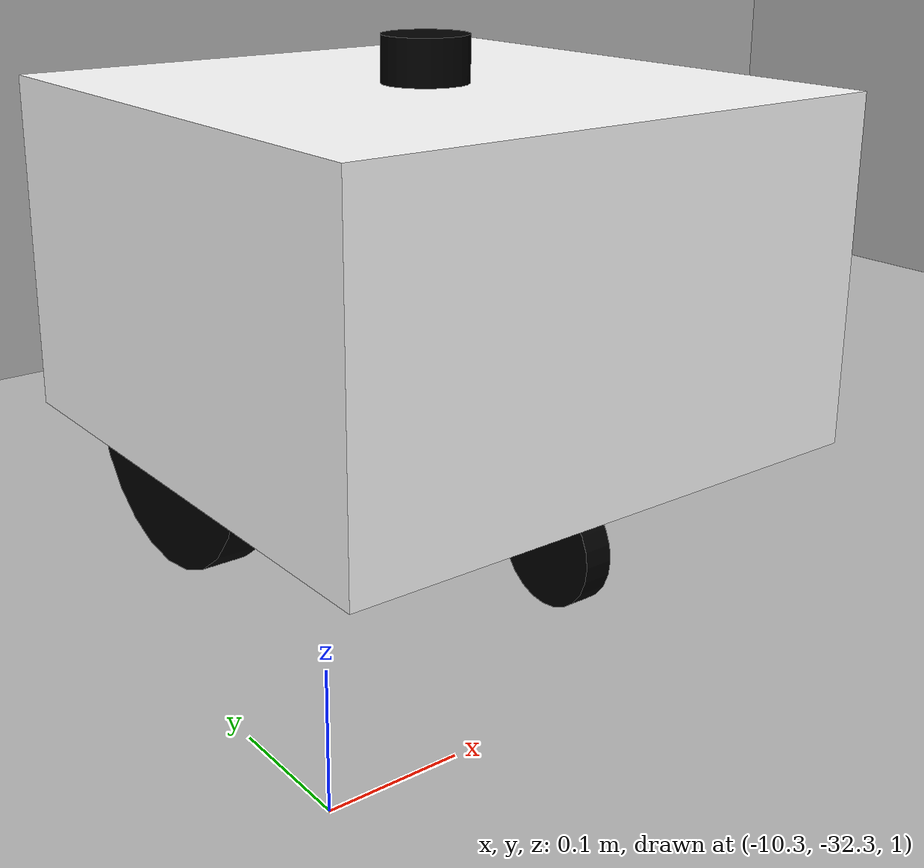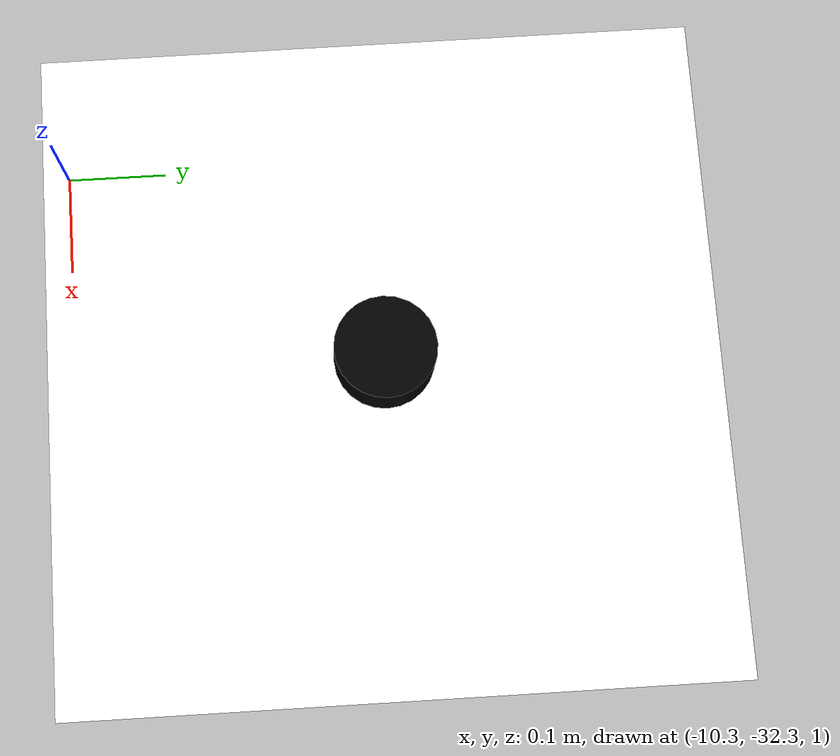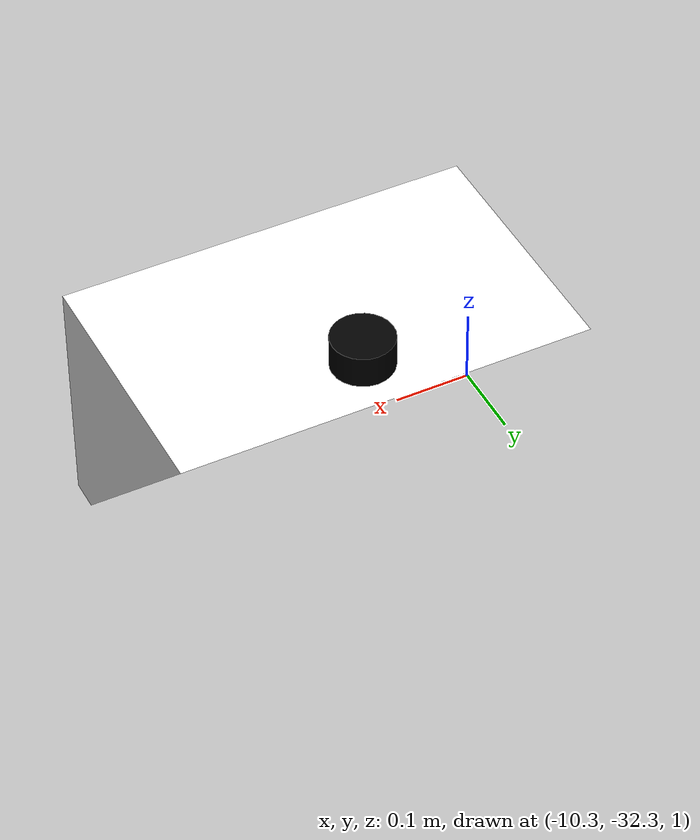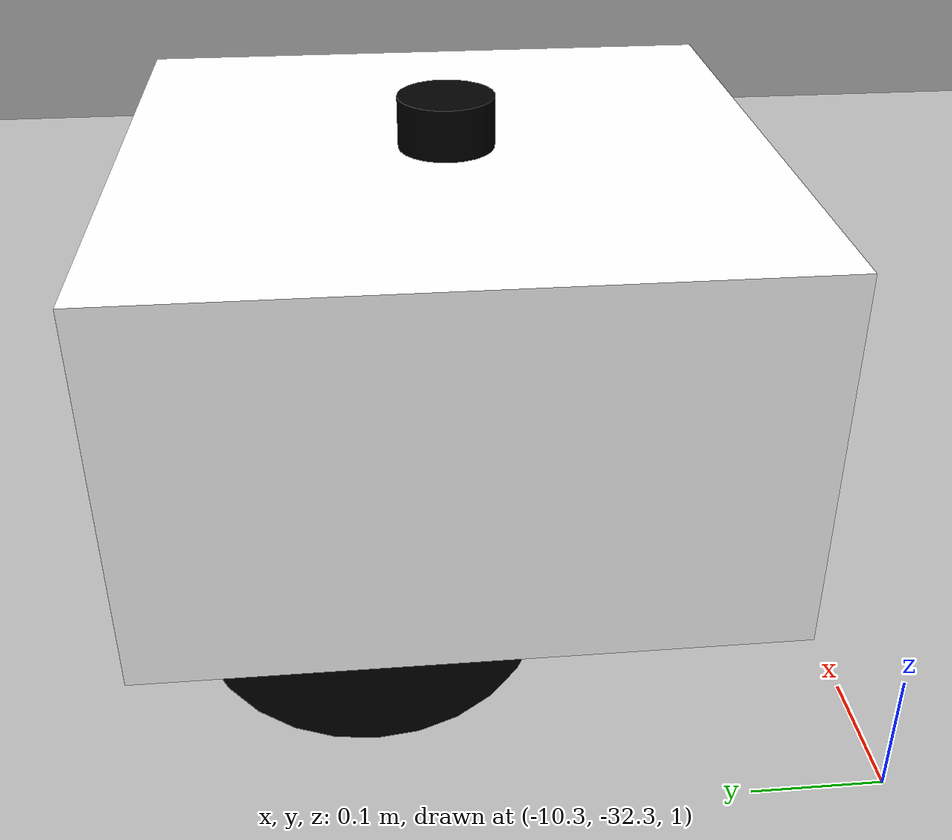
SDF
<?xml version="1.0"?>
<sdf version='1.6'>
    <world name="default">
        <include>
            <uri>model://povo.model</uri>
        </include>
        <include>
            <uri>model://sun</uri>
        </include>
        <include>
            <uri>model://ground_plane</uri>
        </include>
        <include>
            <pose>-10 -32 1 0 0 -1.57</pose>
            <uri>model://g_robot_description</uri>
        </include>
    </world>
</sdf>

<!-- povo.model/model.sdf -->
<sdf version="1.6">
  <model name="povo">
    <static>true</static>
    <link name="link">
      <collision name="collision">
        <geometry>
          <mesh>
            <uri>model://povo.model/meshes/povo.stl</uri>
          </mesh>
        </geometry>
      </collision>
      <visual name="visual">
        <geometry>
          <mesh>
            <uri>model://povo.model/meshes/povo.stl</uri>
          </mesh>
        </geometry>
      </visual>
    </link>
  </model>
</sdf>

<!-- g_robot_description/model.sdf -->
<sdf version="1.5">
  <model name="g_robot">
    <static>false</static>

    <!-- ********************** ROBOT BASE *********************************  -->
    <link name="base_link">
      <pose>0 0 0.25 0 0 0</pose>
      <inertial>
        <inertia>
          <ixx>0.282625</ixx>
          <ixy>0.0</ixy>
          <ixz>0.0</ixz>
          <iyy>0.282625</iyy>
          <iyz>0.0</iyz>
          <izz>0.415625</izz>
        </inertia>
        <mass>10</mass>
      </inertial>

      <collision name="base_collision">
        <geometry>
          <mesh>
            <uri>model://g_robot_description/meshes/base.stl</uri>
          </mesh>
        </geometry>
      </collision>

      <visual name="base_visual">
        <geometry>
          <box>
            <size>0.5 0.5 0.3</size>
          </box>
        </geometry>
        <material>
          <ambient>1.0 1.0 1.0 1.0</ambient>
          <diffuse>1.0 1.0 1.0 1.0</diffuse>
          <specular>0.0 0.0 0.0 1.0</specular>
          <emissive>0.5 0.5 0.5 0.5</emissive>
        </material>
      </visual>
    </link>

    <!-- ****************************** LIDAR *****************************    -->
    <link name="lidar_link">
      <inertial>
        <pose>0 0 0.42 0 0 0</pose>
        <inertia>
          <ixx>0.0001325</ixx>
          <ixy>0.000</ixy>
          <ixz>0.000</ixz>
          <iyy>0.0001325</iyy>
          <iyz>0.000</iyz>
          <izz>0.0001915</izz>
        </inertia>
        <mass>0.190</mass>
      </inertial>

      <collision name="lidar_collision">
        <pose>0 0 0.42 0 0 0</pose>
        <geometry>
          <cylinder>
            <radius>0.0375</radius>
            <length>0.04</length>
          </cylinder>
        </geometry>
      </collision>

      <visual name="lidar_visual">
        <pose>0 0 0.42 0 0 0</pose>
        <geometry>
          <cylinder>
            <radius>0.0375</radius>
            <length>0.04</length>
          </cylinder>
        </geometry>
        <material>
          <ambient>0.0 0.0 0.0 1.0</ambient>
          <diffuse>0.0 0.0 0.0 1.0</diffuse>
          <specular>0.0 0.0 0.0 1.0</specular>
          <emissive>0.0 0.0 0.0 1.0</emissive>
        </material>
      </visual>

      <sensor name="lidar" type="ray">
        <pose>0 0 0.41 0 0 0</pose>
        <always_on>true</always_on>
        <visualize>false</visualize>
        <update_rate>5</update_rate>
        <ray>
          <scan>
            <horizontal>
              <samples>2000</samples>
              <resolution>0.25</resolution>
              <min_angle>-3.14159</min_angle>
              <max_angle>3.14159</max_angle>
            </horizontal>
          </scan>
          <range>
            <min>0.15</min>
            <max>6.0</max>
            <resolution>0.095</resolution>
          </range>
          <noise>
            <type>gaussian</type>
            <mean>0.0</mean>
            <stddev>0.01</stddev>
          </noise>
        </ray>
        <plugin name="scan" filename="libgazebo_ros_ray_sensor.so">
          <ros>
            <remapping>~/out:=scan</remapping>
          </ros>
          <output_type>sensor_msgs/LaserScan</output_type>
          <frame_name>lidar_link</frame_name>
        </plugin>
      </sensor>
    </link>

    <!-- *********************** DRIVE WHEELS ******************************  -->
    <link name="drivewhl_l_link">
      <pose>-0.075 0.2 0.125 0 1.570796 1.570796</pose>

      <inertial>
        <pose>0 0 0 1.570796 0 0</pose>
        <inertia>
          <ixx>0.009178125</ixx>
          <ixy>0.000</ixy>
          <ixz>0.000</ixz>
          <iyy>0.0177465</iyy>
          <iyz>0.000</iyz>
          <izz>0.009178125</izz>
        </inertia>
        <mass>2.0</mass>
      </inertial>

      <collision name="drivewhl_l_collision">
        <geometry>
          <cylinder>
            <radius>0.125</radius>
            <length>0.04</length>
          </cylinder>
        </geometry>
      </collision>

      <visual name="drivewhl_l_visual">
        <geometry>
          <cylinder>
            <radius>0.125</radius>
            <length>0.04</length>
          </cylinder>
        </geometry>
        <material>
          <ambient>0.0 0.0 0.0 1.0</ambient>
          <diffuse>0.0 0.0 0.0 1.0</diffuse>
          <specular>0.0 0.0 0.0 1.0</specular>
          <emissive>0.0 0.0 0.0 1.0</emissive>
        </material>
      </visual>
    </link>

    <link name="drivewhl_r_link">
      <pose>-0.075 -0.2 0.125 0 1.570796 1.570796</pose>

      <inertial>
        <pose>0 0 0 1.570796 0 0 </pose>
        <inertia>
          <ixx>0.009178125</ixx>
          <ixy>0.000</ixy>
          <ixz>0.000</ixz>
          <iyy>0.0177465</iyy>
          <iyz>0.000</iyz>
          <izz>0.009178125</izz>
        </inertia>
        <mass>2.0</mass>
      </inertial>

      <collision name="drivewhl_r_collision">
        <geometry>
          <cylinder>
            <radius>0.125</radius>
            <length>0.04</length>
          </cylinder>
        </geometry>
      </collision>

      <visual name="drivewhl_r_visual">
        <geometry>
          <cylinder>
            <radius>0.125</radius>
            <length>0.04</length>
          </cylinder>
        </geometry>
        <material>
          <ambient>0.0 0.0 0.0 1.0</ambient>
          <diffuse>0.0 0.0 0.0 1.0</diffuse>
          <specular>0.0 0.0 0.0 1.0</specular>
          <emissive>0.0 0.0 0.0 1.0</emissive>
        </material>
      </visual>
    </link>

    <!-- *********************** CASTER WHEEL ******************************  -->
    <link name='front_caster'>
      <pose>0.175 0 0.05 1.570796 0 0</pose>

      <inertial>
        <pose>0 0 0 -1.570796 0 0</pose>
        <inertia>
          <ixx>0.000410</ixx>
          <ixy>0.000</ixy>
          <ixz>0.000</ixz>
          <iyy>0.000757</iyy>
          <iyz>0.000</iyz>
          <izz>0.000410</izz>
        </inertia>
        <mass>0.5</mass>
      </inertial>

      <collision name='front_caster_collision'>
        <geometry>
          <cylinder>
            <radius>0.05</radius>
            <length>0.025</length>
          </cylinder>
        </geometry>
      </collision>

      <visual name="front_caster_visual">
        <geometry>
          <cylinder>
            <radius>0.05</radius>
            <length>0.025</length>
          </cylinder>
        </geometry>
        <material>
          <ambient>0.0 0.0 0.0 1.0</ambient>
          <diffuse>0.0 0.0 0.0 1.0</diffuse>
          <specular>0.0 0.0 0.0 1.0</specular>
          <emissive>0.0 0.0 0.0 1.0</emissive>
        </material>
      </visual>
    </link>

    <!-- ************************ JOINTS ***********************************  -->
    <!-- Pose of the joint is the same as the child link frame -->
    <!-- Axis is the axis of rotation relative to the child link frame -->

    <joint name="drivewhl_l_joint" type="revolute">
      <parent>base_link</parent>
      <child>drivewhl_l_link</child>
      <pose>0 0 0 0 0 0</pose>
      <axis>
        <xyz>0 0 1</xyz>
      </axis>
    </joint>

    <joint name="drivewhl_r_joint" type="revolute">
      <parent>base_link</parent>
      <child>drivewhl_r_link</child>
      <pose>0 0 0 0 0 0</pose>
      <axis>
        <xyz>0 0 1</xyz>
      </axis>
    </joint>

    <joint name='caster_joint' type='fixed'>
      <parent>base_link</parent>
      <child>front_caster</child>
      <pose>0 0 0 0 0 0</pose>
    </joint>

    <joint name="lidar_joint" type="fixed">
      <parent>base_link</parent>
      <child>lidar_link</child>
      <pose>0 0 0 0 0 0</pose>
    </joint>

    <!-- *********************** WHEEL ODOMETRY ***************************    -->
    <plugin name="g_robot_diff_drive" filename="libgazebo_ros_diff_drive.so">

      <update_rate>30</update_rate>

      <!-- wheels -->
      <left_joint>drivewhl_l_joint</left_joint>
      <right_joint>drivewhl_r_joint</right_joint>

      <!-- kinematics -->
      <wheel_separation>0.46</wheel_separation>
      <wheel_diameter>0.28</wheel_diameter>

      <!-- limits -->
      <max_wheel_torque>20</max_wheel_torque>
      <max_wheel_acceleration>1.0</max_wheel_acceleration>

      <!-- Receive velocity commands on this ROS topic -->
      <command_topic>cmd_vel</command_topic>

      <!-- output -->
      <!-- When false, publish no wheel odometry data to a ROS topic -->
      <publish_odom>true</publish_odom>

      <!-- When true, publish coordinate transform from odom to base_footprint -->
      <!-- I usually use the robot_localization package to publish this transform -->
      <publish_odom_tf>true</publish_odom_tf>

      <!-- When true, publish coordinate transform from base_link to the wheels -->
      <!-- The robot_state_publisher package is often used to publish this transform -->
      <publish_wheel_tf>false</publish_wheel_tf>

      <odometry_topic>odom</odometry_topic>
      <odometry_frame>odom</odometry_frame>
      <robot_base_frame>base_link</robot_base_frame>

      <!-- Odometry source, 0 for ENCODER, 1 for WORLD, defaults to WORLD -->
      <odometry_source>1</odometry_source>

      <!-- Change the ROS topic we will publish the odometry data to -->
      <ros>
        <remapping>odom:=wheel/odometry</remapping>
      </ros>

    </plugin>

    <!-- *********************** JOINT STATE PUBLISHER *********************   -->

    <plugin name="g_robot_joint_state" filename="libgazebo_ros_joint_state_publisher.so">
      <ros>
        <remapping>~/out:=joint_states</remapping>
      </ros>
      <update_rate>30</update_rate>
      <joint_name>drivewhl_l_joint</joint_name>
      <joint_name>drivewhl_r_joint</joint_name>
    </plugin>

  </model>
</sdf>
